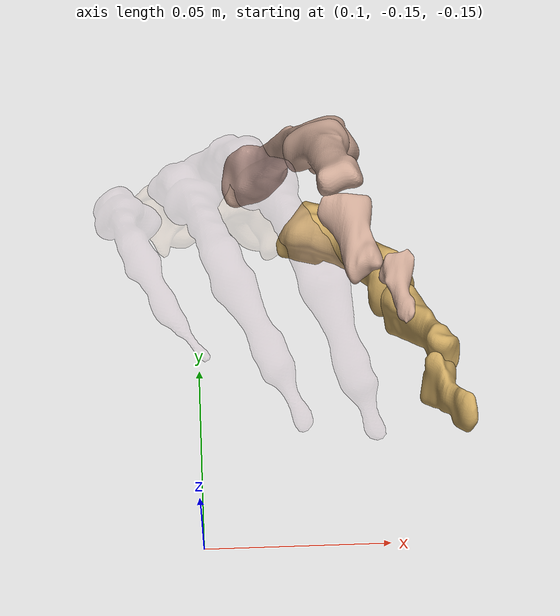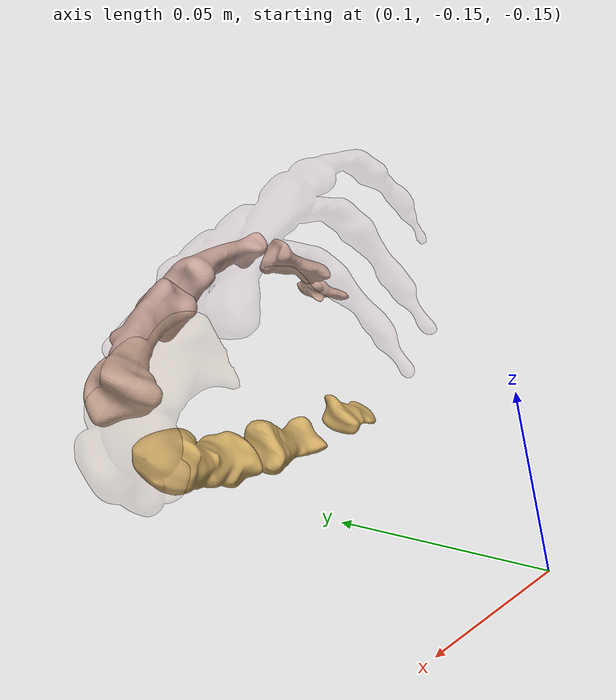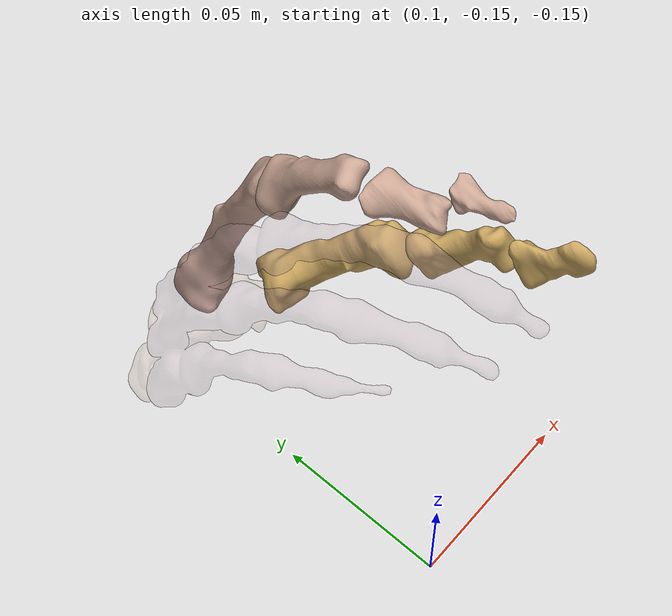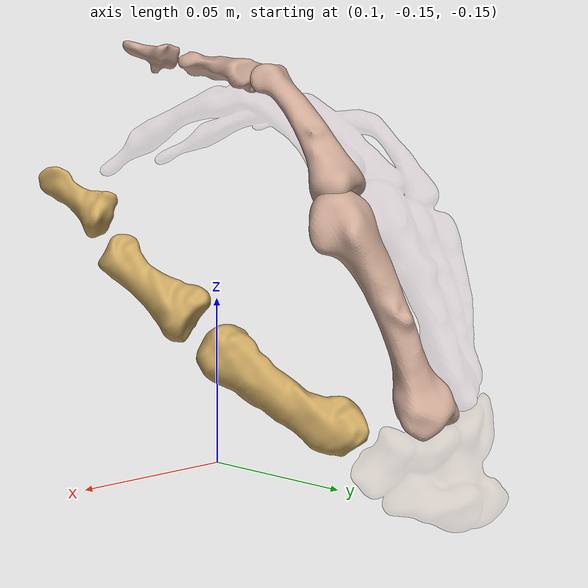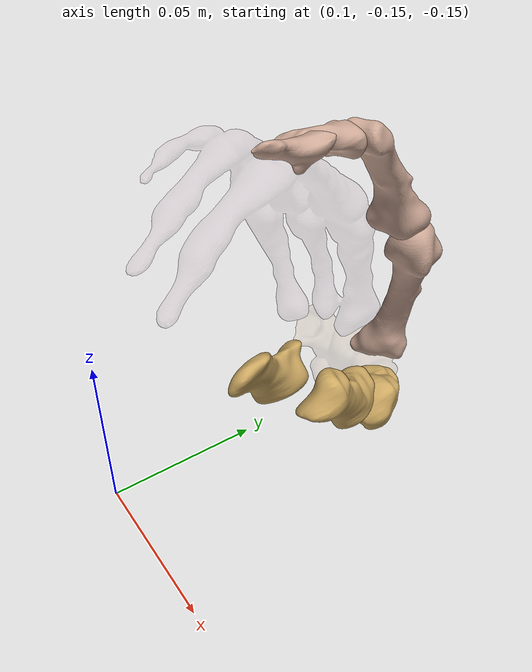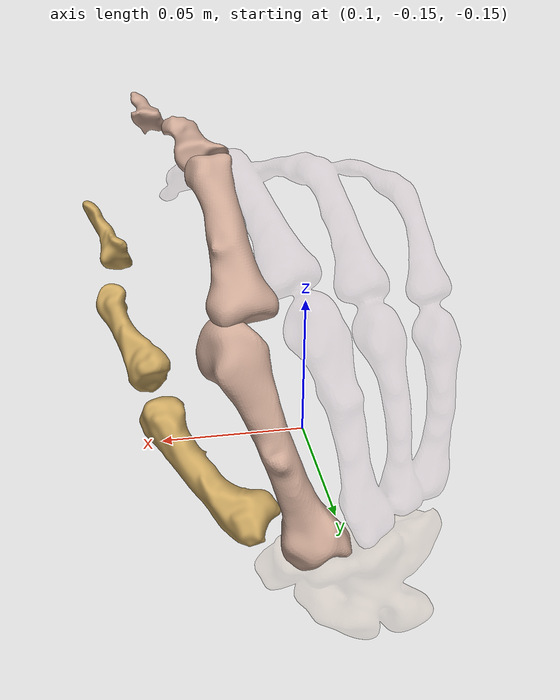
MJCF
<mujoco model="hand model">
    <visual>
        <headlight diffuse="0.6 0.6 0.6" ambient="0.3 0.3 0.3" specular="0 0 0" />
        <rgba haze="0.15 0.25 0.35 1" />
        <map znear="0.01" />
        <global offwidth="1024" offheight="1024" />
    </visual>
    <asset>
        <texture type="skybox" builtin="gradient" rgb1="1 1 1" rgb2="1 1 1" width="512" height="3072" />
        <texture type="2d" name="groundplane" builtin="checker" mark="edge" rgb1="0.2 0.3 0.4" rgb2="0.1 0.2 0.3" markrgb="0.8 0.8 0.8" width="300" height="300" />
        <material name="groundplane" texture="groundplane" texuniform="true" texrepeat="10 10" reflectance="0.3" />
        <material name="bone" reflectance="1" shininess="0" specular="0" rgba="0.68 0.64 0.57 1" />
    </asset>
    <default>
        <default class="zf">
            <geom type="mesh" contype="3" conaffinity="2" group="0" friction="0.7" solref="0.015 1" solimp="0.95 0.99 0.003" rgba="0.78 0.64 0.57 0.9" />
        </default>
        <default class="dau">
            <geom type="mesh" contype="3" conaffinity="2" group="0" friction="0.7" solref="0.015 1" solimp="0.95 0.99 0.003" rgba="0.78 0.64 0.37 0.9" />
        </default>
        <default class="base">
            <geom type="mesh" contype="3" conaffinity="2" group="0" friction="0.7" solref="0.015 1" solimp="0.95 0.99 0.003" rgba="0.74 0.60 0.47 0.1" />
        </default>
        <default class="other">
            <geom type="mesh" contype="3" conaffinity="2" group="0" friction="0.7" solref="0.015 1" solimp="0.95 0.99 0.003" rgba="0.74 0.60 0.67 0.1" />
        </default>
        <default class="visual">
            <geom type="mesh" contype="0" conaffinity="0" group="2" material="bone" rgba="0.68 0.64 0.57 1.0" />
        </default>
        <default class="tracker">
            <geom type="mesh" contype="0" conaffinity="0" group="2" rgba="0.2 0.2 1 0.2" />
        </default>
    </default>

    <compiler angle="radian" meshdir="../../assets/meshes" texturedir="assets" />
    <option integrator="RK4" />

    <statistic center="-0.4 -0.4 0.2" extent="1.2" />

    <asset>
        <mesh file="Segmentation_ZF_DIP.stl" name="ZF-DIP" scale="0.001 0.001 0.001" />
        <mesh file="Segmentation_ZF_PIP.stl" name="ZF-PIP1" scale="0.001 0.001 0.001" />
        <mesh file="zf_mid2.stl" name="ZF-PIP2" scale="0.001 0.001 0.001" />
        <mesh file="zf_mcp.stl" name="ZF-MCP" scale="0.001 0.001 0.001" />
        <mesh file="Segmentation_DAU_Osmetacarpale_1.stl" name="DAU-MCP" scale="0.001 0.001 0.001" />
        <mesh file="Segmentation_DAU_Phalax_proximalis.stl" name="DAU-PIP" scale="0.001 0.001 0.001" />
        <mesh file="Segmentation_DAU_DIP.stl" name="DAU-DIP" scale="0.001 0.001 0.001" />
        <mesh file="backhand.stl" name="BASE" scale="0.001 0.001 0.001" />
        <mesh file="rest.stl" name="OTHER" scale="0.001 0.001 0.001" />
    </asset>

    <worldbody>

        <light pos="0 0 1.5" dir="0 0 -1" directional="true" />

        <body name="ZF_MCP" pos="0.18053788 -0.0037490951 0.16218136" quat="0.95307684 0.26202312 0.15184584 -0.09170782">

            <geom class="zf" mesh="ZF-MCP" type="mesh" />
            <geom class="base" mesh="BASE" type="mesh" />
            <geom class="other" mesh="OTHER" type="mesh" />

            <body name="DAU_MCP" pos="-0.0032517964 -0.001573568 0.0043773274" quat="0.995413 -0.0038733403 0.0019723112 0.0037598626">
                <geom class="dau" mesh="DAU-MCP" type="mesh" />

                <joint armature="0.001" axis="0.6560804 0.22738312 -0.7196217" limited="true" name="ZF_MCP_to_DAU_CMC" pos="0.46205306 -0.25519717 -0.3915488" range="-1 1" type="hinge" />
                <joint armature="0.001" axis="0.7721592 -0.41208166 -0.483693" limited="true" name="DAU_CMC_to_DAU_MCP" pos="0.22389615 -0.31090274 -0.1028974" range="-0.2 1" type="hinge" />

                <body name="DAU_PIP" pos="0.004760765 0.0036810588 -0.0012367605" quat="1.0013659 -0.011007645 -0.00091634714 -0.014203457">
                    <geom class="dau" mesh="DAU-PIP" type="mesh" />

                    <joint armature="0.001" axis="0.9565755 -0.13442276 -0.25863847" limited="true" name="DAU_MCP_to_DAU_PIP" pos="0.07184871 -0.10816852 0.040680137" range="-0.2 1" type="hinge" />

                    <body name="DAU_DIP" pos="0.015502976 0.0047208 0.004690529" quat="0.9966281 -0.006066003 0.007838994 -0.04074001">
                        <geom class="dau" mesh="DAU-DIP" type="mesh" />

                        <joint armature="0.001" axis="0.9955779 0.007332814 -0.093652956" limited="true" name="DAU_PIP_to_DAU_DIP" pos="-0.011884291 -0.05296123 -0.029909957" range="-0.2 1" type="hinge" />
                        <body name="DAU_TIP" pos="0.000753333 -0.0029379183 -0.001242128" quat="0.9968051 -0.00032973467 -0.004504441 0.0007572371" />
                    </body>
                </body>
            </body>

            <body name="ZF_PIP2" pos="-0.060334694 0.04403661 -0.12381743" quat="0.9522867 -0.21905255 -0.19095595 0.026989058">
                <geom class="zf" mesh="ZF-PIP2" type="mesh" />

                <joint armature="0.001" axis="0.9998872 0.014568952 0.003628489" limited="true" name="ZF_MCP_to_ZF_PIP2" pos="-0.022996185 -0.002563061 0.00088220206" range="-0.4 1" type="hinge" />

                <body name="ZF_PIP1" pos="0.0036840986 -0.030141478 0.03499085" quat="0.9926491 0.087095715 0.03338216 0.01857015">
                    <geom class="zf" mesh="ZF-PIP1" type="mesh" />

                    <joint armature="0.001" axis="0.9989478 0.010075294 0.04474139" limited="true" name="ZF_PIP2_to_ZF_PIP1" pos="0.03132676 -0.007981697 -0.015914915" range="-0.4 1" type="hinge" />

                    <body name="ZF_DIP" pos="-0.0036421062 -0.010315725 0.017986964" quat="0.9953247 0.044085428 0.0003937371 0.02290012">
                        <geom class="zf" mesh="ZF-DIP" type="mesh" />

                        <joint armature="0.001" axis="0.9998346 -0.007054236 0.016756652" limited="true" name="ZF_PIP1_to_ZF_DIP" pos="-0.025329035 -0.0056036375 -0.012854422" range="-0.4 1" type="hinge" />

                        <body name="ZF_TIP" pos="0.00023157358 0.0043782173 -0.0035518408" quat="1.0042906 -0.0038272536 0.0035493374 0.0013407081" />
                    </body>
                </body>
            </body>
        </body>

        <camera name="camera0" pos="1.310 0.211 -0.200" xyaxes="-0.256 0.967 0.000 0.111 0.029 0.993" />

    </worldbody>
</mujoco>
